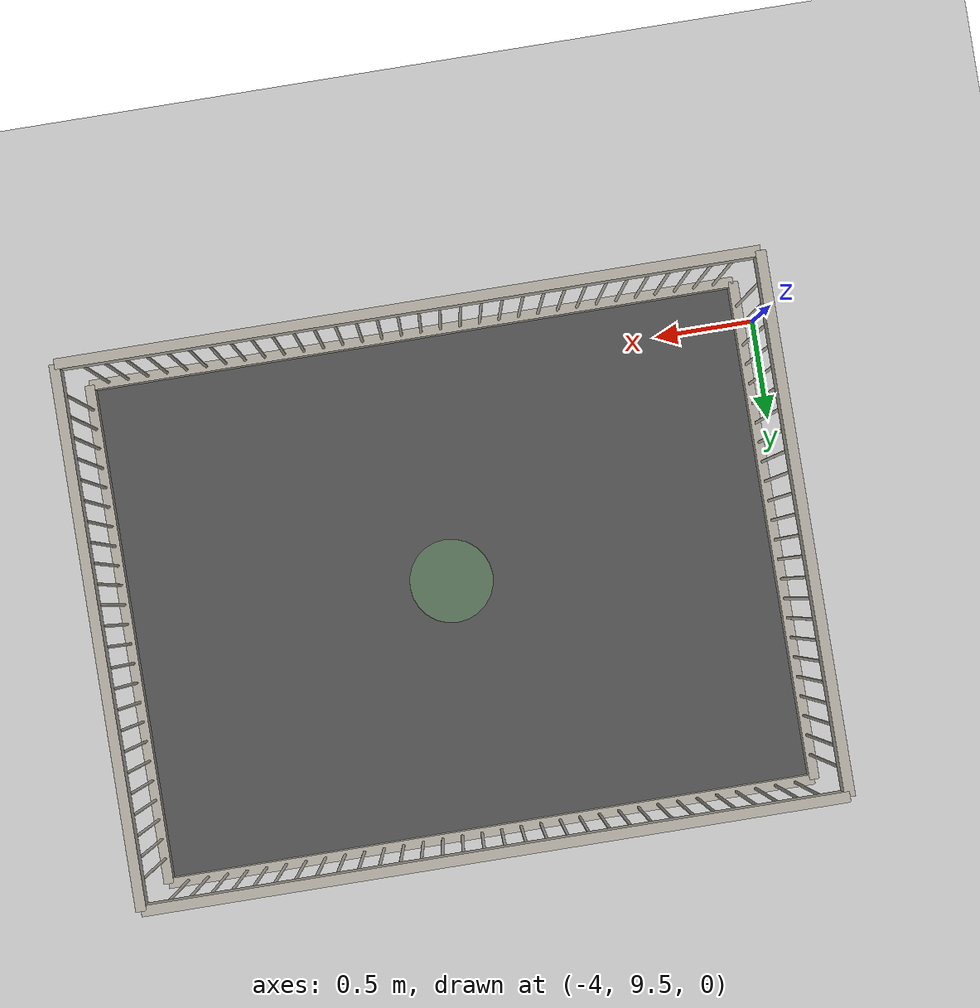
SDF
<sdf version="1.9">
 <world name="pig_pen_16units_world">
  <model name="ground_plane">
   <static>true</static>
   <link name="link">
    <collision name="collision">
     <geometry><plane><normal>0 0 1</normal><size>30 30</size></plane></geometry>
     <surface><friction><ode><mu>1.0</mu><mu2>1.0</mu2></ode></friction></surface>
    </collision>
    <visual name="visual">
     <geometry><plane><normal>0 0 1</normal><size>30 30</size></plane></geometry>
     <material>
      <ambient>0.8 0.8 0.8 1</ambient>
      <diffuse>0.8 0.8 0.8 1</diffuse>
      <specular>0.2 0.2 0.2 1</specular>
     </material>
    </visual>
   </link>
  </model>
  <model name="pen7">
   <pose>-2.275 10.565 0 0 0 0</pose>
   <static>true</static>
   <link name="floor">
    <pose>0 0 0.01 0 0 0</pose>
    <collision name="collision"><geometry><box><size>3.30 2.55 0.02</size></box></geometry></collision>
    <visual name="visual">
     <geometry><box><size>3.30 2.55 0.02</size></box></geometry>
     <material>
      <ambient>0.25 0.25 0.25 1</ambient>
      <diffuse>0.32 0.32 0.32 1</diffuse>
      <specular>0.05 0.05 0.05 1</specular>
     </material>
    </visual>
   </link>
   <link name="left_wall">
    <pose>0 1.275 0.415 0 0 0</pose>
    <collision name="top_rail_col">
     <pose>0 0 0.38 0 0 0</pose>
     <geometry><box><size>3.30 0.05 0.07</size></box></geometry>
    </collision>
    <visual name="top_rail_vis">
     <pose>0 0 0.38 0 0 0</pose>
     <geometry><box><size>3.30 0.05 0.07</size></box></geometry>
     <material><ambient>0.70 0.68 0.64 1</ambient><diffuse>0.70 0.68 0.64 1</diffuse></material>
    </visual>
    <collision name="bottom_rail_col">
     <pose>0 0 -0.38 0 0 0</pose>
     <geometry><box><size>3.30 0.05 0.07</size></box></geometry>
    </collision>
    <visual name="bottom_rail_vis">
     <pose>0 0 -0.38 0 0 0</pose>
     <geometry><box><size>3.30 0.05 0.07</size></box></geometry>
     <material><ambient>0.70 0.68 0.64 1</ambient><diffuse>0.70 0.68 0.64 1</diffuse></material>
    </visual>
    <collision name="bar_01_col">
     <pose>-1.55 0 0 0 0 0</pose>
     <geometry><cylinder><radius>0.0075</radius><length>0.69</length></cylinder></geometry>
    </collision>
    <visual name="bar_01_vis">
     <pose>-1.55 0 0 0 0 0</pose>
     <geometry><cylinder><radius>0.0075</radius><length>0.69</length></cylinder></geometry>
     <material><ambient>0.70 0.68 0.64 1</ambient><diffuse>0.70 0.68 0.64 1</diffuse></material>
    </visual>
    <collision name="bar_02_col">
     <pose>-1.45 0 0 0 0 0</pose>
     <geometry><cylinder><radius>0.0075</radius><length>0.69</length></cylinder></geometry>
    </collision>
    <visual name="bar_02_vis">
     <pose>-1.45 0 0 0 0 0</pose>
     <geometry><cylinder><radius>0.0075</radius><length>0.69</length></cylinder></geometry>
     <material><ambient>0.70 0.68 0.64 1</ambient><diffuse>0.70 0.68 0.64 1</diffuse></material>
    </visual>
    <collision name="bar_03_col">
     <pose>-1.35 0 0 0 0 0</pose>
     <geometry><cylinder><radius>0.0075</radius><length>0.69</length></cylinder></geometry>
    </collision>
    <visual name="bar_03_vis">
     <pose>-1.35 0 0 0 0 0</pose>
     <geometry><cylinder><radius>0.0075</radius><length>0.69</length></cylinder></geometry>
     <material><ambient>0.70 0.68 0.64 1</ambient><diffuse>0.70 0.68 0.64 1</diffuse></material>
    </visual>
    <collision name="bar_04_col">
     <pose>-1.25 0 0 0 0 0</pose>
     <geometry><cylinder><radius>0.0075</radius><length>0.69</length></cylinder></geometry>
    </collision>
    <visual name="bar_04_vis">
     <pose>-1.25 0 0 0 0 0</pose>
     <geometry><cylinder><radius>0.0075</radius><length>0.69</length></cylinder></geometry>
     <material><ambient>0.70 0.68 0.64 1</ambient><diffuse>0.70 0.68 0.64 1</diffuse></material>
    </visual>
    <collision name="bar_05_col">
     <pose>-1.15 0 0 0 0 0</pose>
     <geometry><cylinder><radius>0.0075</radius><length>0.69</length></cylinder></geometry>
    </collision>
    <visual name="bar_05_vis">
     <pose>-1.15 0 0 0 0 0</pose>
     <geometry><cylinder><radius>0.0075</radius><length>0.69</length></cylinder></geometry>
     <material><ambient>0.70 0.68 0.64 1</ambient><diffuse>0.70 0.68 0.64 1</diffuse></material>
    </visual>
    <collision name="bar_06_col">
     <pose>-1.05 0 0 0 0 0</pose>
     <geometry><cylinder><radius>0.0075</radius><length>0.69</length></cylinder></geometry>
    </collision>
    <visual name="bar_06_vis">
     <pose>-1.05 0 0 0 0 0</pose>
     <geometry><cylinder><radius>0.0075</radius><length>0.69</length></cylinder></geometry>
     <material><ambient>0.70 0.68 0.64 1</ambient><diffuse>0.70 0.68 0.64 1</diffuse></material>
    </visual>
    <collision name="bar_07_col">
     <pose>-0.95 0 0 0 0 0</pose>
     <geometry><cylinder><radius>0.0075</radius><length>0.69</length></cylinder></geometry>
    </collision>
    <visual name="bar_07_vis">
     <pose>-0.95 0 0 0 0 0</pose>
     <geometry><cylinder><radius>0.0075</radius><length>0.69</length></cylinder></geometry>
     <material><ambient>0.70 0.68 0.64 1</ambient><diffuse>0.70 0.68 0.64 1</diffuse></material>
    </visual>
    <collision name="bar_08_col">
     <pose>-0.85 0 0 0 0 0</pose>
     <geometry><cylinder><radius>0.0075</radius><length>0.69</length></cylinder></geometry>
    </collision>
    <visual name="bar_08_vis">
     <pose>-0.85 0 0 0 0 0</pose>
     <geometry><cylinder><radius>0.0075</radius><length>0.69</length></cylinder></geometry>
     <material><ambient>0.70 0.68 0.64 1</ambient><diffuse>0.70 0.68 0.64 1</diffuse></material>
    </visual>
    <collision name="bar_09_col">
     <pose>-0.75 0 0 0 0 0</pose>
     <geometry><cylinder><radius>0.0075</radius><length>0.69</length></cylinder></geometry>
    </collision>
    <visual name="bar_09_vis">
     <pose>-0.75 0 0 0 0 0</pose>
     <geometry><cylinder><radius>0.0075</radius><length>0.69</length></cylinder></geometry>
     <material><ambient>0.70 0.68 0.64 1</ambient><diffuse>0.70 0.68 0.64 1</diffuse></material>
    </visual>
    <collision name="bar_10_col">
     <pose>-0.65 0 0 0 0 0</pose>
     <geometry><cylinder><radius>0.0075</radius><length>0.69</length></cylinder></geometry>
    </collision>
    <visual name="bar_10_vis">
     <pose>-0.65 0 0 0 0 0</pose>
     <geometry><cylinder><radius>0.0075</radius><length>0.69</length></cylinder></geometry>
     <material><ambient>0.70 0.68 0.64 1</ambient><diffuse>0.70 0.68 0.64 1</diffuse></material>
    </visual>
    <collision name="bar_11_col">
     <pose>-0.55 0 0 0 0 0</pose>
     <geometry><cylinder><radius>0.0075</radius><length>0.69</length></cylinder></geometry>
    </collision>
    <visual name="bar_11_vis">
     <pose>-0.55 0 0 0 0 0</pose>
     <geometry><cylinder><radius>0.0075</radius><length>0.69</length></cylinder></geometry>
     <material><ambient>0.70 0.68 0.64 1</ambient><diffuse>0.70 0.68 0.64 1</diffuse></material>
    </visual>
    <collision name="bar_12_col">
     <pose>-0.45 0 0 0 0 0</pose>
     <geometry><cylinder><radius>0.0075</radius><length>0.69</length></cylinder></geometry>
    </collision>
    <visual name="bar_12_vis">
     <pose>-0.45 0 0 0 0 0</pose>
     <geometry><cylinder><radius>0.0075</radius><length>0.69</length></cylinder></geometry>
     <material><ambient>0.70 0.68 0.64 1</ambient><diffuse>0.70 0.68 0.64 1</diffuse></material>
    </visual>
    <collision name="bar_13_col">
     <pose>-0.35 0 0 0 0 0</pose>
     <geometry><cylinder><radius>0.0075</radius><length>0.69</length></cylinder></geometry>
    </collision>
    <visual name="bar_13_vis">
     <pose>-0.35 0 0 0 0 0</pose>
     <geometry><cylinder><radius>0.0075</radius><length>0.69</length></cylinder></geometry>
     <material><ambient>0.70 0.68 0.64 1</ambient><diffuse>0.70 0.68 0.64 1</diffuse></material>
    </visual>
    <collision name="bar_14_col">
     <pose>-0.25 0 0 0 0 0</pose>
     <geometry><cylinder><radius>0.0075</radius><length>0.69</length></cylinder></geometry>
    </collision>
    <visual name="bar_14_vis">
     <pose>-0.25 0 0 0 0 0</pose>
     <geometry><cylinder><radius>0.0075</radius><length>0.69</length></cylinder></geometry>
     <material><ambient>0.70 0.68 0.64 1</ambient><diffuse>0.70 0.68 0.64 1</diffuse></material>
    </visual>
    <collision name="bar_15_col">
     <pose>-0.15 0 0 0 0 0</pose>
     <geometry><cylinder><radius>0.0075</radius><length>0.69</length></cylinder></geometry>
    </collision>
    <visual name="bar_15_vis">
     <pose>-0.15 0 0 0 0 0</pose>
     <geometry><cylinder><radius>0.0075</radius><length>0.69</length></cylinder></geometry>
     <material><ambient>0.70 0.68 0.64 1</ambient><diffuse>0.70 0.68 0.64 1</diffuse></material>
    </visual>
    <collision name="bar_16_col">
     <pose>-0.05 0 0 0 0 0</pose>
     <geometry><cylinder><radius>0.0075</radius><length>0.69</length></cylinder></geometry>
    </collision>
    <visual name="bar_16_vis">
     <pose>-0.05 0 0 0 0 0</pose>
     <geometry><cylinder><radius>0.0075</radius><length>0.69</length></cylinder></geometry>
     <material><ambient>0.70 0.68 0.64 1</ambient><diffuse>0.70 0.68 0.64 1</diffuse></material>
    </visual>
    <collision name="bar_17_col">
     <pose>0.05 0 0 0 0 0</pose>
     <geometry><cylinder><radius>0.0075</radius><length>0.69</length></cylinder></geometry>
    </collision>
    <visual name="bar_17_vis">
     <pose>0.05 0 0 0 0 0</pose>
     <geometry><cylinder><radius>0.0075</radius><length>0.69</length></cylinder></geometry>
     <material><ambient>0.70 0.68 0.64 1</ambient><diffuse>0.70 0.68 0.64 1</diffuse></material>
    </visual>
    <collision name="bar_18_col">
     <pose>0.15 0 0 0 0 0</pose>
     <geometry><cylinder><radius>0.0075</radius><length>0.69</length></cylinder></geometry>
    </collision>
    <visual name="bar_18_vis">
     <pose>0.15 0 0 0 0 0</pose>
     <geometry><cylinder><radius>0.0075</radius><length>0.69</length></cylinder></geometry>
     <material><ambient>0.70 0.68 0.64 1</ambient><diffuse>0.70 0.68 0.64 1</diffuse></material>
    </visual>
    <collision name="bar_19_col">
     <pose>0.25 0 0 0 0 0</pose>
     <geometry><cylinder><radius>0.0075</radius><length>0.69</length></cylinder></geometry>
    </collision>
    <visual name="bar_19_vis">
     <pose>0.25 0 0 0 0 0</pose>
     <geometry><cylinder><radius>0.0075</radius><length>0.69</length></cylinder></geometry>
     <material><ambient>0.70 0.68 0.64 1</ambient><diffuse>0.70 0.68 0.64 1</diffuse></material>
    </visual>
    <collision name="bar_20_col">
     <pose>0.35 0 0 0 0 0</pose>
     <geometry><cylinder><radius>0.0075</radius><length>0.69</length></cylinder></geometry>
    </collision>
    <visual name="bar_20_vis">
     <pose>0.35 0 0 0 0 0</pose>
     <geometry><cylinder><radius>0.0075</radius><length>0.69</length></cylinder></geometry>
     <material><ambient>0.70 0.68 0.64 1</ambient><diffuse>0.70 0.68 0.64 1</diffuse></material>
    </visual>
    <collision name="bar_21_col">
     <pose>0.45 0 0 0 0 0</pose>
     <geometry><cylinder><radius>0.0075</radius><length>0.69</length></cylinder></geometry>
    </collision>
    <visual name="bar_21_vis">
     <pose>0.45 0 0 0 0 0</pose>
     <geometry><cylinder><radius>0.0075</radius><length>0.69</length></cylinder></geometry>
     <material><ambient>0.70 0.68 0.64 1</ambient><diffuse>0.70 0.68 0.64 1</diffuse></material>
    </visual>
    <collision name="bar_22_col">
     <pose>0.55 0 0 0 0 0</pose>
     <geometry><cylinder><radius>0.0075</radius><length>0.69</length></cylinder></geometry>
    </collision>
    <visual name="bar_22_vis">
     <pose>0.55 0 0 0 0 0</pose>
     <geometry><cylinder><radius>0.0075</radius><length>0.69</length></cylinder></geometry>
     <material><ambient>0.70 0.68 0.64 1</ambient><diffuse>0.70 0.68 0.64 1</diffuse></material>
    </visual>
    <collision name="bar_23_col">
     <pose>0.65 0 0 0 0 0</pose>
     <geometry><cylinder><radius>0.0075</radius><length>0.69</length></cylinder></geometry>
    </collision>
    <visual name="bar_23_vis">
     <pose>0.65 0 0 0 0 0</pose>
     <geometry><cylinder><radius>0.0075</radius><length>0.69</length></cylinder></geometry>
     <material><ambient>0.70 0.68 0.64 1</ambient><diffuse>0.70 0.68 0.64 1</diffuse></material>
    </visual>
    <collision name="bar_24_col">
     <pose>0.75 0 0 0 0 0</pose>
     <geometry><cylinder><radius>0.0075</radius><length>0.69</length></cylinder></geometry>
    </collision>
    <visual name="bar_24_vis">
     <pose>0.75 0 0 0 0 0</pose>
     <geometry><cylinder><radius>0.0075</radius><length>0.69</length></cylinder></geometry>
     <material><ambient>0.70 0.68 0.64 1</ambient><diffuse>0.70 0.68 0.64 1</diffuse></material>
    </visual>
    <collision name="bar_25_col">
     <pose>0.85 0 0 0 0 0</pose>
     <geometry><cylinder><radius>0.0075</radius><length>0.69</length></cylinder></geometry>
    </collision>
    <visual name="bar_25_vis">
     <pose>0.85 0 0 0 0 0</pose>
     <geometry><cylinder><radius>0.0075</radius><length>0.69</length></cylinder></geometry>
     <material><ambient>0.70 0.68 0.64 1</ambient><diffuse>0.70 0.68 0.64 1</diffuse></material>
    </visual>
    <collision name="bar_26_col">
     <pose>0.95 0 0 0 0 0</pose>
     <geometry><cylinder><radius>0.0075</radius><length>0.69</length></cylinder></geometry>
    </collision>
    <visual name="bar_26_vis">
     <pose>0.95 0 0 0 0 0</pose>
     <geometry><cylinder><radius>0.0075</radius><length>0.69</length></cylinder></geometry>
     <material><ambient>0.70 0.68 0.64 1</ambient><diffuse>0.70 0.68 0.64 1</diffuse></material>
    </visual>
    <collision name="bar_27_col">
     <pose>1.05 0 0 0 0 0</pose>
     <geometry><cylinder><radius>0.0075</radius><length>0.69</length></cylinder></geometry>
    </collision>
    <visual name="bar_27_vis">
     <pose>1.05 0 0 0 0 0</pose>
     <geometry><cylinder><radius>0.0075</radius><length>0.69</length></cylinder></geometry>
     <material><ambient>0.70 0.68 0.64 1</ambient><diffuse>0.70 0.68 0.64 1</diffuse></material>
    </visual>
    <collision name="bar_28_col">
     <pose>1.15 0 0 0 0 0</pose>
     <geometry><cylinder><radius>0.0075</radius><length>0.69</length></cylinder></geometry>
    </collision>
    <visual name="bar_28_vis">
     <pose>1.15 0 0 0 0 0</pose>
     <geometry><cylinder><radius>0.0075</radius><length>0.69</length></cylinder></geometry>
     <material><ambient>0.70 0.68 0.64 1</ambient><diffuse>0.70 0.68 0.64 1</diffuse></material>
    </visual>
    <collision name="bar_29_col">
     <pose>1.25 0 0 0 0 0</pose>
     <geometry><cylinder><radius>0.0075</radius><length>0.69</length></cylinder></geometry>
    </collision>
    <visual name="bar_29_vis">
     <pose>1.25 0 0 0 0 0</pose>
     <geometry><cylinder><radius>0.0075</radius><length>0.69</length></cylinder></geometry>
     <material><ambient>0.70 0.68 0.64 1</ambient><diffuse>0.70 0.68 0.64 1</diffuse></material>
    </visual>
    <collision name="bar_30_col">
     <pose>1.35 0 0 0 0 0</pose>
     <geometry><cylinder><radius>0.0075</radius><length>0.69</length></cylinder></geometry>
    </collision>
    <visual name="bar_30_vis">
     <pose>1.35 0 0 0 0 0</pose>
     <geometry><cylinder><radius>0.0075</radius><length>0.69</length></cylinder></geometry>
     <material><ambient>0.70 0.68 0.64 1</ambient><diffuse>0.70 0.68 0.64 1</diffuse></material>
    </visual>
    <collision name="bar_31_col">
     <pose>1.45 0 0 0 0 0</pose>
     <geometry><cylinder><radius>0.0075</radius><length>0.69</length></cylinder></geometry>
    </collision>
    <visual name="bar_31_vis">
     <pose>1.45 0 0 0 0 0</pose>
     <geometry><cylinder><radius>0.0075</radius><length>0.69</length></cylinder></geometry>
     <material><ambient>0.70 0.68 0.64 1</ambient><diffuse>0.70 0.68 0.64 1</diffuse></material>
    </visual>
    <collision name="bar_32_col">
     <pose>1.55 0 0 0 0 0</pose>
     <geometry><cylinder><radius>0.0075</radius><length>0.69</length></cylinder></geometry>
    </collision>
    <visual name="bar_32_vis">
     <pose>1.55 0 0 0 0 0</pose>
     <geometry><cylinder><radius>0.0075</radius><length>0.69</length></cylinder></geometry>
     <material><ambient>0.70 0.68 0.64 1</ambient><diffuse>0.70 0.68 0.64 1</diffuse></material>
    </visual>
   </link>
   <link name="right_wall">
    <pose>0 -1.275 0.415 0 0 0</pose>
    <collision name="top_rail_col">
     <pose>0 0 0.38 0 0 0</pose>
     <geometry><box><size>3.30 0.05 0.07</size></box></geometry>
    </collision>
    <visual name="top_rail_vis">
     <pose>0 0 0.38 0 0 0</pose>
     <geometry><box><size>3.30 0.05 0.07</size></box></geometry>
     <material><ambient>0.70 0.68 0.64 1</ambient><diffuse>0.70 0.68 0.64 1</diffuse></material>
    </visual>
    <collision name="bottom_rail_col">
     <pose>0 0 -0.38 0 0 0</pose>
     <geometry><box><size>3.30 0.05 0.07</size></box></geometry>
    </collision>
    <visual name="bottom_rail_vis">
     <pose>0 0 -0.38 0 0 0</pose>
     <geometry><box><size>3.30 0.05 0.07</size></box></geometry>
     <material><ambient>0.70 0.68 0.64 1</ambient><diffuse>0.70 0.68 0.64 1</diffuse></material>
    </visual>
    <collision name="bar_01_col">
     <pose>-1.55 0 0 0 0 0</pose>
     <geometry><cylinder><radius>0.0075</radius><length>0.69</length></cylinder></geometry>
    </collision>
    <visual name="bar_01_vis">
     <pose>-1.55 0 0 0 0 0</pose>
     <geometry><cylinder><radius>0.0075</radius><length>0.69</length></cylinder></geometry>
     <material><ambient>0.70 0.68 0.64 1</ambient><diffuse>0.70 0.68 0.64 1</diffuse></material>
    </visual>
    <collision name="bar_02_col">
     <pose>-1.45 0 0 0 0 0</pose>
     <geometry><cylinder><radius>0.0075</radius><length>0.69</length></cylinder></geometry>
    </collision>
    <visual name="bar_02_vis">
     <pose>-1.45 0 0 0 0 0</pose>
     <geometry><cylinder><radius>0.0075</radius><length>0.69</length></cylinder></geometry>
     <material><ambient>0.70 0.68 0.64 1</ambient><diffuse>0.70 0.68 0.64 1</diffuse></material>
    </visual>
    <collision name="bar_03_col">
     <pose>-1.35 0 0 0 0 0</pose>
     <geometry><cylinder><radius>0.0075</radius><length>0.69</length></cylinder></geometry>
    </collision>
    <visual name="bar_03_vis">
     <pose>-1.35 0 0 0 0 0</pose>
     <geometry><cylinder><radius>0.0075</radius><length>0.69</length></cylinder></geometry>
     <material><ambient>0.70 0.68 0.64 1</ambient><diffuse>0.70 0.68 0.64 1</diffuse></material>
    </visual>
    <collision name="bar_04_col">
     <pose>-1.25 0 0 0 0 0</pose>
     <geometry><cylinder><radius>0.0075</radius><length>0.69</length></cylinder></geometry>
    </collision>
    <visual name="bar_04_vis">
     <pose>-1.25 0 0 0 0 0</pose>
     <geometry><cylinder><radius>0.0075</radius><length>0.69</length></cylinder></geometry>
     <material><ambient>0.70 0.68 0.64 1</ambient><diffuse>0.70 0.68 0.64 1</diffuse></material>
    </visual>
    <collision name="bar_05_col">
     <pose>-1.15 0 0 0 0 0</pose>
     <geometry><cylinder><radius>0.0075</radius><length>0.69</length></cylinder></geometry>
    </collision>
    <visual name="bar_05_vis">
     <pose>-1.15 0 0 0 0 0</pose>
     <geometry><cylinder><radius>0.0075</radius><length>0.69</length></cylinder></geometry>
     <material><ambient>0.70 0.68 0.64 1</ambient><diffuse>0.70 0.68 0.64 1</diffuse></material>
    </visual>
    <collision name="bar_06_col">
     <pose>-1.05 0 0 0 0 0</pose>
     <geometry><cylinder><radius>0.0075</radius><length>0.69</length></cylinder></geometry>
    </collision>
    <visual name="bar_06_vis">
     <pose>-1.05 0 0 0 0 0</pose>
     <geometry><cylinder><radius>0.0075</radius><length>0.69</length></cylinder></geometry>
     <material><ambient>0.70 0.68 0.64 1</ambient><diffuse>0.70 0.68 0.64 1</diffuse></material>
    </visual>
    <collision name="bar_07_col">
     <pose>-0.95 0 0 0 0 0</pose>
     <geometry><cylinder><radius>0.0075</radius><length>0.69</length></cylinder></geometry>
    </collision>
    <visual name="bar_07_vis">
     <pose>-0.95 0 0 0 0 0</pose>
     <geometry><cylinder><radius>0.0075</radius><length>0.69</length></cylinder></geometry>
     <material><ambient>0.70 0.68 0.64 1</ambient><diffuse>0.70 0.68 0.64 1</diffuse></material>
    </visual>
    <collision name="bar_08_col">
     <pose>-0.85 0 0 0 0 0</pose>
     <geometry><cylinder><radius>0.0075</radius><length>0.69</length></cylinder></geometry>
    </collision>
    <visual name="bar_08_vis">
     <pose>-0.85 0 0 0 0 0</pose>
     <geometry><cylinder><radius>0.0075</radius><length>0.69</length></cylinder></geometry>
     <material><ambient>0.70 0.68 0.64 1</ambient><diffuse>0.70 0.68 0.64 1</diffuse></material>
    </visual>
    <collision name="bar_09_col">
     <pose>-0.75 0 0 0 0 0</pose>
     <geometry><cylinder><radius>0.0075</radius><length>0.69</length></cylinder></geometry>
    </collision>
    <visual name="bar_09_vis">
     <pose>-0.75 0 0 0 0 0</pose>
     <geometry><cylinder><radius>0.0075</radius><length>0.69</length></cylinder></geometry>
     <material><ambient>0.70 0.68 0.64 1</ambient><diffuse>0.70 0.68 0.64 1</diffuse></material>
    </visual>
    <collision name="bar_10_col">
     <pose>-0.65 0 0 0 0 0</pose>
     <geometry><cylinder><radius>0.0075</radius><length>0.69</length></cylinder></geometry>
    </collision>
    <visual name="bar_10_vis">
     <pose>-0.65 0 0 0 0 0</pose>
     <geometry><cylinder><radius>0.0075</radius><length>0.69</length></cylinder></geometry>
     <material><ambient>0.70 0.68 0.64 1</ambient><diffuse>0.70 0.68 0.64 1</diffuse></material>
    </visual>
    <collision name="bar_11_col">
     <pose>-0.55 0 0 0 0 0</pose>
     <geometry><cylinder><radius>0.0075</radius><length>0.69</length></cylinder></geometry>
    </collision>
    <visual name="bar_11_vis">
     <pose>-0.55 0 0 0 0 0</pose>
     <geometry><cylinder><radius>0.0075</radius><length>0.69</length></cylinder></geometry>
     <material><ambient>0.70 0.68 0.64 1</ambient><diffuse>0.70 0.68 0.64 1</diffuse></material>
    </visual>
    <collision name="bar_12_col">
     <pose>-0.45 0 0 0 0 0</pose>
     <geometry><cylinder><radius>0.0075</radius><length>0.69</length></cylinder></geometry>
    </collision>
    <visual name="bar_12_vis">
     <pose>-0.45 0 0 0 0 0</pose>
     <geometry><cylinder><radius>0.0075</radius><length>0.69</length></cylinder></geometry>
     <material><ambient>0.70 0.68 0.64 1</ambient><diffuse>0.70 0.68 0.64 1</diffuse></material>
    </visual>
    <collision name="bar_13_col">
     <pose>-0.35 0 0 0 0 0</pose>
     <geometry><cylinder><radius>0.0075</radius><length>0.69</length></cylinder></geometry>
    </collision>
    <visual name="bar_13_vis">
     <pose>-0.35 0 0 0 0 0</pose>
     <geometry><cylinder><radius>0.0075</radius><length>0.69</length></cylinder></geometry>
     <material><ambient>0.70 0.68 0.64 1</ambient><diffuse>0.70 0.68 0.64 1</diffuse></material>
    </visual>
    <collision name="bar_14_col">
     <pose>-0.25 0 0 0 0 0</pose>
     <geometry><cylinder><radius>0.0075</radius><length>0.69</length></cylinder></geometry>
    </collision>
    <visual name="bar_14_vis">
     <pose>-0.25 0 0 0 0 0</pose>
     <geometry><cylinder><radius>0.0075</radius><length>0.69</length></cylinder></geometry>
     <material><ambient>0.70 0.68 0.64 1</ambient><diffuse>0.70 0.68 0.64 1</diffuse></material>
    </visual>
    <collision name="bar_15_col">
     <pose>-0.15 0 0 0 0 0</pose>
     <geometry><cylinder><radius>0.0075</radius><length>0.69</length></cylinder></geometry>
    </collision>
    <visual name="bar_15_vis">
     <pose>-0.15 0 0 0 0 0</pose>
     <geometry><cylinder><radius>0.0075</radius><length>0.69</length></cylinder></geometry>
     <material><ambient>0.70 0.68 0.64 1</ambient><diffuse>0.70 0.68 0.64 1</diffuse></material>
    </visual>
    <collision name="bar_16_col">
     <pose>-0.05 0 0 0 0 0</pose>
     <geometry><cylinder><radius>0.0075</radius><length>0.69</length></cylinder></geometry>
    </collision>
    <visual name="bar_16_vis">
     <pose>-0.05 0 0 0 0 0</pose>
     <geometry><cylinder><radius>0.0075</radius><length>0.69</length></cylinder></geometry>
     <material><ambient>0.70 0.68 0.64 1</ambient><diffuse>0.70 0.68 0.64 1</diffuse></material>
    </visual>
    <collision name="bar_17_col">
     <pose>0.05 0 0 0 0 0</pose>
     <geometry><cylinder><radius>0.0075</radius><length>0.69</length></cylinder></geometry>
    </collision>
    <visual name="bar_17_vis">
     <pose>0.05 0 0 0 0 0</pose>
     <geometry><cylinder><radius>0.0075</radius><length>0.69</length></cylinder></geometry>
     <material><ambient>0.70 0.68 0.64 1</ambient><diffuse>0.70 0.68 0.64 1</diffuse></material>
    </visual>
    <collision name="bar_18_col">
     <pose>0.15 0 0 0 0 0</pose>
     <geometry><cylinder><radius>0.0075</radius><length>0.69</length></cylinder></geometry>
    </collision>
    <visual name="bar_18_vis">
     <pose>0.15 0 0 0 0 0</pose>
     <geometry><cylinder><radius>0.0075</radius><length>0.69</length></cylinder></geometry>
     <material><ambient>0.70 0.68 0.64 1</ambient><diffuse>0.70 0.68 0.64 1</diffuse></material>
    </visual>
    <collision name="bar_19_col">
     <pose>0.25 0 0 0 0 0</pose>
     <geometry><cylinder><radius>0.0075</radius><length>0.69</length></cylinder></geometry>
    </collision>
    <visual name="bar_19_vis">
     <pose>0.25 0 0 0 0 0</pose>
     <geometry><cylinder><radius>0.0075</radius><length>0.69</length></cylinder></geometry>
     <material><ambient>0.70 0.68 0.64 1</ambient><diffuse>0.70 0.68 0.64 1</diffuse></material>
    </visual>
    <collision name="bar_20_col">
     <pose>0.35 0 0 0 0 0</pose>
     <geometry><cylinder><radius>0.0075</radius><length>0.69</length></cylinder></geometry>
    </collision>
    <visual name="bar_20_vis">
     <pose>0.35 0 0 0 0 0</pose>
     <geometry><cylinder><radius>0.0075</radius><length>0.69</length></cylinder></geometry>
     <material><ambient>0.70 0.68 0.64 1</ambient><diffuse>0.70 0.68 0.64 1</diffuse></material>
    </visual>
    <collision name="bar_21_col">
     <pose>0.45 0 0 0 0 0</pose>
     <geometry><cylinder><radius>0.0075</radius><length>0.69</length></cylinder></geometry>
    </collision>
    <visual name="bar_21_vis">
     <pose>0.45 0 0 0 0 0</pose>
     <geometry><cylinder><radius>0.0075</radius><length>0.69</length></cylinder></geometry>
     <material><ambient>0.70 0.68 0.64 1</ambient><diffuse>0.70 0.68 0.64 1</diffuse></material>
    </visual>
    <collision name="bar_22_col">
     <pose>0.55 0 0 0 0 0</pose>
     <geometry><cylinder><radius>0.0075</radius><length>0.69</length></cylinder></geometry>
    </collision>
    <visual name="bar_22_vis">
     <pose>0.55 0 0 0 0 0</pose>
     <geometry><cylinder><radius>0.0075</radius><length>0.69</length></cylinder></geometry>
     <material><ambient>0.70 0.68 0.64 1</ambient><diffuse>0.70 0.68 0.64 1</diffuse></material>
    </visual>
    <collision name="bar_23_col">
     <pose>0.65 0 0 0 0 0</pose>
     <geometry><cylinder><radius>0.0075</radius><length>0.69</length></cylinder></geometry>
    </collision>
    <visual name="bar_23_vis">
     <pose>0.65 0 0 0 0 0</pose>
     <geometry><cylinder><radius>0.0075</radius><length>0.69</length></cylinder></geometry>
     <material><ambient>0.70 0.68 0.64 1</ambient><diffuse>0.70 0.68 0.64 1</diffuse></material>
    </visual>
    <collision name="bar_24_col">
     <pose>0.75 0 0 0 0 0</pose>
     <geometry><cylinder><radius>0.0075</radius><length>0.69</length></cylinder></geometry>
    </collision>
    <visual name="bar_24_vis">
     <pose>0.75 0 0 0 0 0</pose>
     <geometry><cylinder><radius>0.0075</radius><length>0.69</length></cylinder></geometry>
     <material><ambient>0.70 0.68 0.64 1</ambient><diffuse>0.70 0.68 0.64 1</diffuse></material>
    </visual>
    <collision name="bar_25_col">
     <pose>0.85 0 0 0 0 0</pose>
     <geometry><cylinder><radius>0.0075</radius><length>0.69</length></cylinder></geometry>
    </collision>
    <visual name="bar_25_vis">
     <pose>0.85 0 0 0 0 0</pose>
     <geometry><cylinder><radius>0.0075</radius><length>0.69</length></cylinder></geometry>
     <material><ambient>0.70 0.68 0.64 1</ambient><diffuse>0.70 0.68 0.64 1</diffuse></material>
    </visual>
    <collision name="bar_26_col">
     <pose>0.95 0 0 0 0 0</pose>
     <geometry><cylinder><radius>0.0075</radius><length>0.69</length></cylinder></geometry>
    </collision>
    <visual name="bar_26_vis">
     <pose>0.95 0 0 0 0 0</pose>
     <geometry><cylinder><radius>0.0075</radius><length>0.69</length></cylinder></geometry>
     <material><ambient>0.70 0.68 0.64 1</ambient><diffuse>0.70 0.68 0.64 1</diffuse></material>
    </visual>
    <collision name="bar_27_col">
     <pose>1.05 0 0 0 0 0</pose>
     <geometry><cylinder><radius>0.0075</radius><length>0.69</length></cylinder></geometry>
    </collision>
    <visual name="bar_27_vis">
     <pose>1.05 0 0 0 0 0</pose>
     <geometry><cylinder><radius>0.0075</radius><length>0.69</length></cylinder></geometry>
     <material><ambient>0.70 0.68 0.64 1</ambient><diffuse>0.70 0.68 0.64 1</diffuse></material>
    </visual>
    <collision name="bar_28_col">
     <pose>1.15 0 0 0 0 0</pose>
     <geometry><cylinder><radius>0.0075</radius><length>0.69</length></cylinder></geometry>
    </collision>
    <visual name="bar_28_vis">
     <pose>1.15 0 0 0 0 0</pose>
     <geometry><cylinder><radius>0.0075</radius><length>0.69</length></cylinder></geometry>
     <material><ambient>0.70 0.68 0.64 1</ambient><diffuse>0.70 0.68 0.64 1</diffuse></material>
    </visual>
    <collision name="bar_29_col">
     <pose>1.25 0 0 0 0 0</pose>
     <geometry><cylinder><radius>0.0075</radius><length>0.69</length></cylinder></geometry>
    </collision>
    <visual name="bar_29_vis">
     <pose>1.25 0 0 0 0 0</pose>
     <geometry><cylinder><radius>0.0075</radius><length>0.69</length></cylinder></geometry>
     <material><ambient>0.70 0.68 0.64 1</ambient><diffuse>0.70 0.68 0.64 1</diffuse></material>
    </visual>
    <collision name="bar_30_col">
     <pose>1.35 0 0 0 0 0</pose>
     <geometry><cylinder><radius>0.0075</radius><length>0.69</length></cylinder></geometry>
    </collision>
    <visual name="bar_30_vis">
     <pose>1.35 0 0 0 0 0</pose>
     <geometry><cylinder><radius>0.0075</radius><length>0.69</length></cylinder></geometry>
     <material><ambient>0.70 0.68 0.64 1</ambient><diffuse>0.70 0.68 0.64 1</diffuse></material>
    </visual>
    <collision name="bar_31_col">
     <pose>1.45 0 0 0 0 0</pose>
     <geometry><cylinder><radius>0.0075</radius><length>0.69</length></cylinder></geometry>
    </collision>
    <visual name="bar_31_vis">
     <pose>1.45 0 0 0 0 0</pose>
     <geometry><cylinder><radius>0.0075</radius><length>0.69</length></cylinder></geometry>
     <material><ambient>0.70 0.68 0.64 1</ambient><diffuse>0.70 0.68 0.64 1</diffuse></material>
    </visual>
    <collision name="bar_32_col">
     <pose>1.55 0 0 0 0 0</pose>
     <geometry><cylinder><radius>0.0075</radius><length>0.69</length></cylinder></geometry>
    </collision>
    <visual name="bar_32_vis">
     <pose>1.55 0 0 0 0 0</pose>
     <geometry><cylinder><radius>0.0075</radius><length>0.69</length></cylinder></geometry>
     <material><ambient>0.70 0.68 0.64 1</ambient><diffuse>0.70 0.68 0.64 1</diffuse></material>
    </visual>
   </link>
   <link name="back_wall">
    <pose>1.65 0 0.415 0 0 0</pose>
    <collision name="top_rail_col">
     <pose>0 0 0.38 0 0 0</pose>
     <geometry><box><size>0.05 2.55 0.07</size></box></geometry>
    </collision>
    <visual name="top_rail_vis">
     <pose>0 0 0.38 0 0 0</pose>
     <geometry><box><size>0.05 2.55 0.07</size></box></geometry>
     <material><ambient>0.70 0.68 0.64 1</ambient><diffuse>0.70 0.68 0.64 1</diffuse></material>
    </visual>
    <collision name="bottom_rail_col">
     <pose>0 0 -0.38 0 0 0</pose>
     <geometry><box><size>0.05 2.55 0.07</size></box></geometry>
    </collision>
    <visual name="bottom_rail_vis">
     <pose>0 0 -0.38 0 0 0</pose>
     <geometry><box><size>0.05 2.55 0.07</size></box></geometry>
     <material><ambient>0.70 0.68 0.64 1</ambient><diffuse>0.70 0.68 0.64 1</diffuse></material>
    </visual>
    <collision name="bar_01_col">
     <pose>0 -1.15 0 0 0 0</pose>
     <geometry><cylinder><radius>0.0075</radius><length>0.69</length></cylinder></geometry>
    </collision>
    <visual name="bar_01_vis">
     <pose>0 -1.15 0 0 0 0</pose>
     <geometry><cylinder><radius>0.0075</radius><length>0.69</length></cylinder></geometry>
     <material><ambient>0.70 0.68 0.64 1</ambient><diffuse>0.70 0.68 0.64 1</diffuse></material>
    </visual>
    <collision name="bar_02_col">
     <pose>0 -1.05 0 0 0 0</pose>
     <geometry><cylinder><radius>0.0075</radius><length>0.69</length></cylinder></geometry>
    </collision>
    <visual name="bar_02_vis">
     <pose>0 -1.05 0 0 0 0</pose>
     <geometry><cylinder><radius>0.0075</radius><length>0.69</length></cylinder></geometry>
     <material><ambient>0.70 0.68 0.64 1</ambient><diffuse>0.70 0.68 0.64 1</diffuse></material>
    </visual>
    <collision name="bar_03_col">
     <pose>0 -0.95 0 0 0 0</pose>
     <geometry><cylinder><radius>0.0075</radius><length>0.69</length></cylinder></geometry>
    </collision>
    <visual name="bar_03_vis">
     <pose>0 -0.95 0 0 0 0</pose>
     <geometry><cylinder><radius>0.0075</radius><length>0.69</length></cylinder></geometry>
     <material><ambient>0.70 0.68 0.64 1</ambient><diffuse>0.70 0.68 0.64 1</diffuse></material>
    </visual>
    <collision name="bar_04_col">
     <pose>0 -0.85 0 0 0 0</pose>
     <geometry><cylinder><radius>0.0075</radius><length>0.69</length></cylinder></geometry>
    </collision>
    <visual name="bar_04_vis">
     <pose>0 -0.85 0 0 0 0</pose>
     <geometry><cylinder><radius>0.0075</radius><length>0.69</length></cylinder></geometry>
     <material><ambient>0.70 0.68 0.64 1</ambient><diffuse>0.70 0.68 0.64 1</diffuse></material>
    </visual>
    <collision name="bar_05_col">
     <pose>0 -0.75 0 0 0 0</pose>
     <geometry><cylinder><radius>0.0075</radius><length>0.69</length></cylinder></geometry>
    </collision>
    <visual name="bar_05_vis">
     <pose>0 -0.75 0 0 0 0</pose>
     <geometry><cylinder><radius>0.0075</radius><length>0.69</length></cylinder></geometry>
     <material><ambient>0.70 0.68 0.64 1</ambient><diffuse>0.70 0.68 0.64 1</diffuse></material>
    </visual>
    <collision name="bar_06_col">
     <pose>0 -0.65 0 0 0 0</pose>
     <geometry><cylinder><radius>0.0075</radius><length>0.69</length></cylinder></geometry>
    </collision>
    <visual name="bar_06_vis">
     <pose>0 -0.65 0 0 0 0</pose>
     <geometry><cylinder><radius>0.0075</radius><length>0.69</length></cylinder></geometry>
     <material><ambient>0.70 0.68 0.64 1</ambient><diffuse>0.70 0.68 0.64 1</diffuse></material>
    </visual>
    <collision name="bar_07_col">
     <pose>0 -0.55 0 0 0 0</pose>
     <geometry><cylinder><radius>0.0075</radius><length>0.69</length></cylinder></geometry>
    </collision>
    <visual name="bar_07_vis">
     <pose>0 -0.55 0 0 0 0</pose>
     <geometry><cylinder><radius>0.0075</radius><length>0.69</length></cylinder></geometry>
     <material><ambient>0.70 0.68 0.64 1</ambient><diffuse>0.70 0.68 0.64 1</diffuse></material>
    </visual>
    <collision name="bar_08_col">
     <pose>0 -0.45 0 0 0 0</pose>
     <geometry><cylinder><radius>0.0075</radius><length>0.69</length></cylinder></geometry>
    </collision>
    <visual name="bar_08_vis">
     <pose>0 -0.45 0 0 0 0</pose>
     <geometry><cylinder><radius>0.0075</radius><length>0.69</length></cylinder></geometry>
     <material><ambient>0.70 0.68 0.64 1</ambient><diffuse>0.70 0.68 0.64 1</diffuse></material>
    </visual>
    <collision name="bar_09_col">
     <pose>0 -0.35 0 0 0 0</pose>
     <geometry><cylinder><radius>0.0075</radius><length>0.69</length></cylinder></geometry>
    </collision>
    <visual name="bar_09_vis">
     <pose>0 -0.35 0 0 0 0</pose>
     <geometry><cylinder><radius>0.0075</radius><length>0.69</length></cylinder></geometry>
     <material><ambient>0.70 0.68 0.64 1</ambient><diffuse>0.70 0.68 0.64 1</diffuse></material>
    </visual>
    <collision name="bar_10_col">
     <pose>0 -0.25 0 0 0 0</pose>
     <geometry><cylinder><radius>0.0075</radius><length>0.69</length></cylinder></geometry>
    </collision>
    <visual name="bar_10_vis">
     <pose>0 -0.25 0 0 0 0</pose>
     <geometry><cylinder><radius>0.0075</radius><length>0.69</length></cylinder></geometry>
     <material><ambient>0.70 0.68 0.64 1</ambient><diffuse>0.70 0.68 0.64 1</diffuse></material>
    </visual>
    <collision name="bar_11_col">
     <pose>0 -0.15 0 0 0 0</pose>
     <geometry><cylinder><radius>0.0075</radius><length>0.69</length></cylinder></geometry>
    </collision>
    <visual name="bar_11_vis">
     <pose>0 -0.15 0 0 0 0</pose>
     <geometry><cylinder><radius>0.0075</radius><length>0.69</length></cylinder></geometry>
     <material><ambient>0.70 0.68 0.64 1</ambient><diffuse>0.70 0.68 0.64 1</diffuse></material>
    </visual>
    <collision name="bar_12_col">
     <pose>0 -0.05 0 0 0 0</pose>
     <geometry><cylinder><radius>0.0075</radius><length>0.69</length></cylinder></geometry>
    </collision>
    <visual name="bar_12_vis">
     <pose>0 -0.05 0 0 0 0</pose>
     <geometry><cylinder><radius>0.0075</radius><length>0.69</length></cylinder></geometry>
     <material><ambient>0.70 0.68 0.64 1</ambient><diffuse>0.70 0.68 0.64 1</diffuse></material>
    </visual>
    <collision name="bar_13_col">
     <pose>0 0.05 0 0 0 0</pose>
     <geometry><cylinder><radius>0.0075</radius><length>0.69</length></cylinder></geometry>
    </collision>
    <visual name="bar_13_vis">
     <pose>0 0.05 0 0 0 0</pose>
     <geometry><cylinder><radius>0.0075</radius><length>0.69</length></cylinder></geometry>
     <material><ambient>0.70 0.68 0.64 1</ambient><diffuse>0.70 0.68 0.64 1</diffuse></material>
    </visual>
    <collision name="bar_14_col">
     <pose>0 0.15 0 0 0 0</pose>
     <geometry><cylinder><radius>0.0075</radius><length>0.69</length></cylinder></geometry>
    </collision>
    <visual name="bar_14_vis">
     <pose>0 0.15 0 0 0 0</pose>
     <geometry><cylinder><radius>0.0075</radius><length>0.69</length></cylinder></geometry>
     <material><ambient>0.70 0.68 0.64 1</ambient><diffuse>0.70 0.68 0.64 1</diffuse></material>
    </visual>
    <collision name="bar_15_col">
     <pose>0 0.25 0 0 0 0</pose>
     <geometry><cylinder><radius>0.0075</radius><length>0.69</length></cylinder></geometry>
    </collision>
    <visual name="bar_15_vis">
     <pose>0 0.25 0 0 0 0</pose>
     <geometry><cylinder><radius>0.0075</radius><length>0.69</length></cylinder></geometry>
     <material><ambient>0.70 0.68 0.64 1</ambient><diffuse>0.70 0.68 0.64 1</diffuse></material>
    </visual>
    <collision name="bar_16_col">
     <pose>0 0.35 0 0 0 0</pose>
     <geometry><cylinder><radius>0.0075</radius><length>0.69</length></cylinder></geometry>
    </collision>
    <visual name="bar_16_vis">
     <pose>0 0.35 0 0 0 0</pose>
     <geometry><cylinder><radius>0.0075</radius><length>0.69</length></cylinder></geometry>
     <material><ambient>0.70 0.68 0.64 1</ambient><diffuse>0.70 0.68 0.64 1</diffuse></material>
    </visual>
    <collision name="bar_17_col">
     <pose>0 0.45 0 0 0 0</pose>
     <geometry><cylinder><radius>0.0075</radius><length>0.69</length></cylinder></geometry>
    </collision>
    <visual name="bar_17_vis">
     <pose>0 0.45 0 0 0 0</pose>
     <geometry><cylinder><radius>0.0075</radius><length>0.69</length></cylinder></geometry>
     <material><ambient>0.70 0.68 0.64 1</ambient><diffuse>0.70 0.68 0.64 1</diffuse></material>
    </visual>
    <collision name="bar_18_col">
     <pose>0 0.55 0 0 0 0</pose>
     <geometry><cylinder><radius>0.0075</radius><length>0.69</length></cylinder></geometry>
    </collision>
    <visual name="bar_18_vis">
     <pose>0 0.55 0 0 0 0</pose>
     <geometry><cylinder><radius>0.0075</radius><length>0.69</length></cylinder></geometry>
     <material><ambient>0.70 0.68 0.64 1</ambient><diffuse>0.70 0.68 0.64 1</diffuse></material>
    </visual>
    <collision name="bar_19_col">
     <pose>0 0.65 0 0 0 0</pose>
     <geometry><cylinder><radius>0.0075</radius><length>0.69</length></cylinder></geometry>
    </collision>
    <visual name="bar_19_vis">
     <pose>0 0.65 0 0 0 0</pose>
     <geometry><cylinder><radius>0.0075</radius><length>0.69</length></cylinder></geometry>
     <material><ambient>0.70 0.68 0.64 1</ambient><diffuse>0.70 0.68 0.64 1</diffuse></material>
    </visual>
    <collision name="bar_20_col">
     <pose>0 0.75 0 0 0 0</pose>
     <geometry><cylinder><radius>0.0075</radius><length>0.69</length></cylinder></geometry>
    </collision>
    <visual name="bar_20_vis">
     <pose>0 0.75 0 0 0 0</pose>
     <geometry><cylinder><radius>0.0075</radius><length>0.69</length></cylinder></geometry>
     <material><ambient>0.70 0.68 0.64 1</ambient><diffuse>0.70 0.68 0.64 1</diffuse></material>
    </visual>
    <collision name="bar_21_col">
     <pose>0 0.85 0 0 0 0</pose>
     <geometry><cylinder><radius>0.0075</radius><length>0.69</length></cylinder></geometry>
    </collision>
    <visual name="bar_21_vis">
     <pose>0 0.85 0 0 0 0</pose>
     <geometry><cylinder><radius>0.0075</radius><length>0.69</length></cylinder></geometry>
     <material><ambient>0.70 0.68 0.64 1</ambient><diffuse>0.70 0.68 0.64 1</diffuse></material>
    </visual>
    <collision name="bar_22_col">
     <pose>0 0.95 0 0 0 0</pose>
     <geometry><cylinder><radius>0.0075</radius><length>0.69</length></cylinder></geometry>
    </collision>
    <visual name="bar_22_vis">
     <pose>0 0.95 0 0 0 0</pose>
     <geometry><cylinder><radius>0.0075</radius><length>0.69</length></cylinder></geometry>
     <material><ambient>0.70 0.68 0.64 1</ambient><diffuse>0.70 0.68 0.64 1</diffuse></material>
    </visual>
    <collision name="bar_23_col">
     <pose>0 1.05 0 0 0 0</pose>
     <geometry><cylinder><radius>0.0075</radius><length>0.69</length></cylinder></geometry>
    </collision>
    <visual name="bar_23_vis">
     <pose>0 1.05 0 0 0 0</pose>
     <geometry><cylinder><radius>0.0075</radius><length>0.69</length></cylinder></geometry>
     <material><ambient>0.70 0.68 0.64 1</ambient><diffuse>0.70 0.68 0.64 1</diffuse></material>
    </visual>
    <collision name="bar_24_col">
     <pose>0 1.15 0 0 0 0</pose>
     <geometry><cylinder><radius>0.0075</radius><length>0.69</length></cylinder></geometry>
    </collision>
    <visual name="bar_24_vis">
     <pose>0 1.15 0 0 0 0</pose>
     <geometry><cylinder><radius>0.0075</radius><length>0.69</length></cylinder></geometry>
     <material><ambient>0.70 0.68 0.64 1</ambient><diffuse>0.70 0.68 0.64 1</diffuse></material>
    </visual>
   </link>
   <link name="front_wall">
    <pose>-1.65 0 0.415 0 0 0</pose>
    <collision name="top_rail_col">
     <pose>0 0 0.38 0 0 0</pose>
     <geometry><box><size>0.05 2.55 0.07</size></box></geometry>
    </collision>
    <visual name="top_rail_vis">
     <pose>0 0 0.38 0 0 0</pose>
     <geometry><box><size>0.05 2.55 0.07</size></box></geometry>
     <material><ambient>0.70 0.68 0.64 1</ambient><diffuse>0.70 0.68 0.64 1</diffuse></material>
    </visual>
    <collision name="bottom_rail_col">
     <pose>0 0 -0.38 0 0 0</pose>
     <geometry><box><size>0.05 2.55 0.07</size></box></geometry>
    </collision>
    <visual name="bottom_rail_vis">
     <pose>0 0 -0.38 0 0 0</pose>
     <geometry><box><size>0.05 2.55 0.07</size></box></geometry>
     <material><ambient>0.70 0.68 0.64 1</ambient><diffuse>0.70 0.68 0.64 1</diffuse></material>
    </visual>
    <collision name="bar_01_col">
     <pose>0 -1.15 0 0 0 0</pose>
     <geometry><cylinder><radius>0.0075</radius><length>0.69</length></cylinder></geometry>
    </collision>
    <visual name="bar_01_vis">
     <pose>0 -1.15 0 0 0 0</pose>
     <geometry><cylinder><radius>0.0075</radius><length>0.69</length></cylinder></geometry>
     <material><ambient>0.70 0.68 0.64 1</ambient><diffuse>0.70 0.68 0.64 1</diffuse></material>
    </visual>
    <collision name="bar_02_col">
     <pose>0 -1.05 0 0 0 0</pose>
     <geometry><cylinder><radius>0.0075</radius><length>0.69</length></cylinder></geometry>
    </collision>
    <visual name="bar_02_vis">
     <pose>0 -1.05 0 0 0 0</pose>
     <geometry><cylinder><radius>0.0075</radius><length>0.69</length></cylinder></geometry>
     <material><ambient>0.70 0.68 0.64 1</ambient><diffuse>0.70 0.68 0.64 1</diffuse></material>
    </visual>
    <collision name="bar_03_col">
     <pose>0 -0.95 0 0 0 0</pose>
     <geometry><cylinder><radius>0.0075</radius><length>0.69</length></cylinder></geometry>
    </collision>
    <visual name="bar_03_vis">
     <pose>0 -0.95 0 0 0 0</pose>
     <geometry><cylinder><radius>0.0075</radius><length>0.69</length></cylinder></geometry>
     <material><ambient>0.70 0.68 0.64 1</ambient><diffuse>0.70 0.68 0.64 1</diffuse></material>
    </visual>
    <collision name="bar_04_col">
     <pose>0 -0.85 0 0 0 0</pose>
     <geometry><cylinder><radius>0.0075</radius><length>0.69</length></cylinder></geometry>
    </collision>
    <visual name="bar_04_vis">
     <pose>0 -0.85 0 0 0 0</pose>
     <geometry><cylinder><radius>0.0075</radius><length>0.69</length></cylinder></geometry>
     <material><ambient>0.70 0.68 0.64 1</ambient><diffuse>0.70 0.68 0.64 1</diffuse></material>
    </visual>
    <collision name="bar_05_col">
     <pose>0 -0.75 0 0 0 0</pose>
     <geometry><cylinder><radius>0.0075</radius><length>0.69</length></cylinder></geometry>
    </collision>
    <visual name="bar_05_vis">
     <pose>0 -0.75 0 0 0 0</pose>
     <geometry><cylinder><radius>0.0075</radius><length>0.69</length></cylinder></geometry>
     <material><ambient>0.70 0.68 0.64 1</ambient><diffuse>0.70 0.68 0.64 1</diffuse></material>
    </visual>
    <collision name="bar_06_col">
     <pose>0 -0.65 0 0 0 0</pose>
     <geometry><cylinder><radius>0.0075</radius><length>0.69</length></cylinder></geometry>
    </collision>
    <visual name="bar_06_vis">
     <pose>0 -0.65 0 0 0 0</pose>
     <geometry><cylinder><radius>0.0075</radius><length>0.69</length></cylinder></geometry>
     <material><ambient>0.70 0.68 0.64 1</ambient><diffuse>0.70 0.68 0.64 1</diffuse></material>
    </visual>
    <collision name="bar_07_col">
     <pose>0 -0.55 0 0 0 0</pose>
     <geometry><cylinder><radius>0.0075</radius><length>0.69</length></cylinder></geometry>
    </collision>
    <visual name="bar_07_vis">
     <pose>0 -0.55 0 0 0 0</pose>
     <geometry><cylinder><radius>0.0075</radius><length>0.69</length></cylinder></geometry>
     <material><ambient>0.70 0.68 0.64 1</ambient><diffuse>0.70 0.68 0.64 1</diffuse></material>
    </visual>
    <collision name="bar_08_col">
     <pose>0 -0.45 0 0 0 0</pose>
     <geometry><cylinder><radius>0.0075</radius><length>0.69</length></cylinder></geometry>
    </collision>
    <visual name="bar_08_vis">
     <pose>0 -0.45 0 0 0 0</pose>
     <geometry><cylinder><radius>0.0075</radius><length>0.69</length></cylinder></geometry>
     <material><ambient>0.70 0.68 0.64 1</ambient><diffuse>0.70 0.68 0.64 1</diffuse></material>
    </visual>
    <collision name="bar_09_col">
     <pose>0 -0.35 0 0 0 0</pose>
     <geometry><cylinder><radius>0.0075</radius><length>0.69</length></cylinder></geometry>
    </collision>
    <visual name="bar_09_vis">
     <pose>0 -0.35 0 0 0 0</pose>
     <geometry><cylinder><radius>0.0075</radius><length>0.69</length></cylinder></geometry>
     <material><ambient>0.70 0.68 0.64 1</ambient><diffuse>0.70 0.68 0.64 1</diffuse></material>
    </visual>
    <collision name="bar_10_col">
     <pose>0 -0.25 0 0 0 0</pose>
     <geometry><cylinder><radius>0.0075</radius><length>0.69</length></cylinder></geometry>
    </collision>
    <visual name="bar_10_vis">
     <pose>0 -0.25 0 0 0 0</pose>
     <geometry><cylinder><radius>0.0075</radius><length>0.69</length></cylinder></geometry>
     <material><ambient>0.70 0.68 0.64 1</ambient><diffuse>0.70 0.68 0.64 1</diffuse></material>
    </visual>
    <collision name="bar_11_col">
     <pose>0 -0.15 0 0 0 0</pose>
     <geometry><cylinder><radius>0.0075</radius><length>0.69</length></cylinder></geometry>
    </collision>
    <visual name="bar_11_vis">
     <pose>0 -0.15 0 0 0 0</pose>
     <geometry><cylinder><radius>0.0075</radius><length>0.69</length></cylinder></geometry>
     <material><ambient>0.70 0.68 0.64 1</ambient><diffuse>0.70 0.68 0.64 1</diffuse></material>
    </visual>
    <collision name="bar_12_col">
     <pose>0 -0.05 0 0 0 0</pose>
     <geometry><cylinder><radius>0.0075</radius><length>0.69</length></cylinder></geometry>
    </collision>
    <visual name="bar_12_vis">
     <pose>0 -0.05 0 0 0 0</pose>
     <geometry><cylinder><radius>0.0075</radius><length>0.69</length></cylinder></geometry>
     <material><ambient>0.70 0.68 0.64 1</ambient><diffuse>0.70 0.68 0.64 1</diffuse></material>
    </visual>
    <collision name="bar_13_col">
     <pose>0 0.05 0 0 0 0</pose>
     <geometry><cylinder><radius>0.0075</radius><length>0.69</length></cylinder></geometry>
    </collision>
    <visual name="bar_13_vis">
     <pose>0 0.05 0 0 0 0</pose>
     <geometry><cylinder><radius>0.0075</radius><length>0.69</length></cylinder></geometry>
     <material><ambient>0.70 0.68 0.64 1</ambient><diffuse>0.70 0.68 0.64 1</diffuse></material>
    </visual>
    <collision name="bar_14_col">
     <pose>0 0.15 0 0 0 0</pose>
     <geometry><cylinder><radius>0.0075</radius><length>0.69</length></cylinder></geometry>
    </collision>
    <visual name="bar_14_vis">
     <pose>0 0.15 0 0 0 0</pose>
     <geometry><cylinder><radius>0.0075</radius><length>0.69</length></cylinder></geometry>
     <material><ambient>0.70 0.68 0.64 1</ambient><diffuse>0.70 0.68 0.64 1</diffuse></material>
    </visual>
    <collision name="bar_15_col">
     <pose>0 0.25 0 0 0 0</pose>
     <geometry><cylinder><radius>0.0075</radius><length>0.69</length></cylinder></geometry>
    </collision>
    <visual name="bar_15_vis">
     <pose>0 0.25 0 0 0 0</pose>
     <geometry><cylinder><radius>0.0075</radius><length>0.69</length></cylinder></geometry>
     <material><ambient>0.70 0.68 0.64 1</ambient><diffuse>0.70 0.68 0.64 1</diffuse></material>
    </visual>
    <collision name="bar_16_col">
     <pose>0 0.35 0 0 0 0</pose>
     <geometry><cylinder><radius>0.0075</radius><length>0.69</length></cylinder></geometry>
    </collision>
    <visual name="bar_16_vis">
     <pose>0 0.35 0 0 0 0</pose>
     <geometry><cylinder><radius>0.0075</radius><length>0.69</length></cylinder></geometry>
     <material><ambient>0.70 0.68 0.64 1</ambient><diffuse>0.70 0.68 0.64 1</diffuse></material>
    </visual>
    <collision name="bar_17_col">
     <pose>0 0.45 0 0 0 0</pose>
     <geometry><cylinder><radius>0.0075</radius><length>0.69</length></cylinder></geometry>
    </collision>
    <visual name="bar_17_vis">
     <pose>0 0.45 0 0 0 0</pose>
     <geometry><cylinder><radius>0.0075</radius><length>0.69</length></cylinder></geometry>
     <material><ambient>0.70 0.68 0.64 1</ambient><diffuse>0.70 0.68 0.64 1</diffuse></material>
    </visual>
    <collision name="bar_18_col">
     <pose>0 0.55 0 0 0 0</pose>
     <geometry><cylinder><radius>0.0075</radius><length>0.69</length></cylinder></geometry>
    </collision>
    <visual name="bar_18_vis">
     <pose>0 0.55 0 0 0 0</pose>
     <geometry><cylinder><radius>0.0075</radius><length>0.69</length></cylinder></geometry>
     <material><ambient>0.70 0.68 0.64 1</ambient><diffuse>0.70 0.68 0.64 1</diffuse></material>
    </visual>
    <collision name="bar_19_col">
     <pose>0 0.65 0 0 0 0</pose>
     <geometry><cylinder><radius>0.0075</radius><length>0.69</length></cylinder></geometry>
    </collision>
    <visual name="bar_19_vis">
     <pose>0 0.65 0 0 0 0</pose>
     <geometry><cylinder><radius>0.0075</radius><length>0.69</length></cylinder></geometry>
     <material><ambient>0.70 0.68 0.64 1</ambient><diffuse>0.70 0.68 0.64 1</diffuse></material>
    </visual>
    <collision name="bar_20_col">
     <pose>0 0.75 0 0 0 0</pose>
     <geometry><cylinder><radius>0.0075</radius><length>0.69</length></cylinder></geometry>
    </collision>
    <visual name="bar_20_vis">
     <pose>0 0.75 0 0 0 0</pose>
     <geometry><cylinder><radius>0.0075</radius><length>0.69</length></cylinder></geometry>
     <material><ambient>0.70 0.68 0.64 1</ambient><diffuse>0.70 0.68 0.64 1</diffuse></material>
    </visual>
    <collision name="bar_21_col">
     <pose>0 0.85 0 0 0 0</pose>
     <geometry><cylinder><radius>0.0075</radius><length>0.69</length></cylinder></geometry>
    </collision>
    <visual name="bar_21_vis">
     <pose>0 0.85 0 0 0 0</pose>
     <geometry><cylinder><radius>0.0075</radius><length>0.69</length></cylinder></geometry>
     <material><ambient>0.70 0.68 0.64 1</ambient><diffuse>0.70 0.68 0.64 1</diffuse></material>
    </visual>
    <collision name="bar_22_col">
     <pose>0 0.95 0 0 0 0</pose>
     <geometry><cylinder><radius>0.0075</radius><length>0.69</length></cylinder></geometry>
    </collision>
    <visual name="bar_22_vis">
     <pose>0 0.95 0 0 0 0</pose>
     <geometry><cylinder><radius>0.0075</radius><length>0.69</length></cylinder></geometry>
     <material><ambient>0.70 0.68 0.64 1</ambient><diffuse>0.70 0.68 0.64 1</diffuse></material>
    </visual>
    <collision name="bar_23_col">
     <pose>0 1.05 0 0 0 0</pose>
     <geometry><cylinder><radius>0.0075</radius><length>0.69</length></cylinder></geometry>
    </collision>
    <visual name="bar_23_vis">
     <pose>0 1.05 0 0 0 0</pose>
     <geometry><cylinder><radius>0.0075</radius><length>0.69</length></cylinder></geometry>
     <material><ambient>0.70 0.68 0.64 1</ambient><diffuse>0.70 0.68 0.64 1</diffuse></material>
    </visual>
    <collision name="bar_24_col">
     <pose>0 1.15 0 0 0 0</pose>
     <geometry><cylinder><radius>0.0075</radius><length>0.69</length></cylinder></geometry>
    </collision>
    <visual name="bar_24_vis">
     <pose>0 1.15 0 0 0 0</pose>
     <geometry><cylinder><radius>0.0075</radius><length>0.69</length></cylinder></geometry>
     <material><ambient>0.70 0.68 0.64 1</ambient><diffuse>0.70 0.68 0.64 1</diffuse></material>
    </visual>
   </link>
   <link name="feeder">
    <pose>0 0 0.275 0 0 0</pose>
    <collision name="collision">
     <geometry><cylinder><radius>0.20</radius><length>0.55</length></cylinder></geometry>
    </collision>
    <visual name="visual">
     <geometry><cylinder><radius>0.20</radius><length>0.55</length></cylinder></geometry>
     <material><ambient>0.35 0.45 0.35 1</ambient><diffuse>0.35 0.45 0.35 1</diffuse></material>
    </visual>
   </link>
  </model>
 </world>
</sdf>
